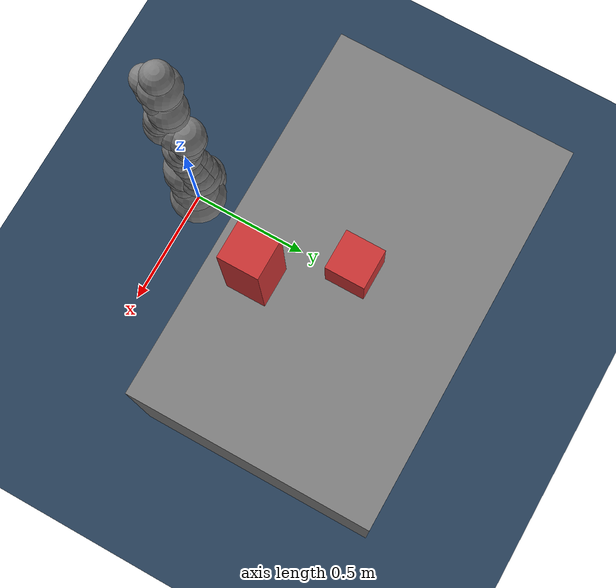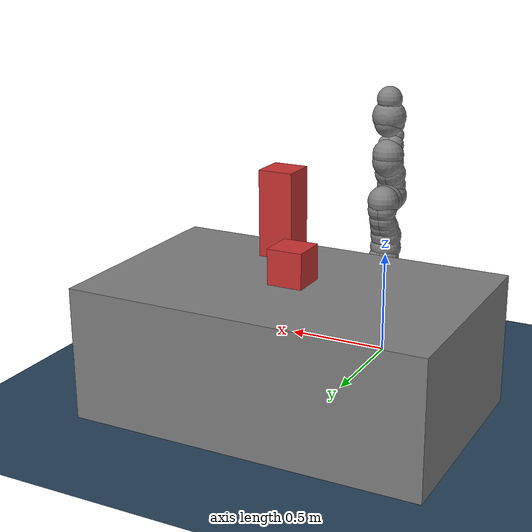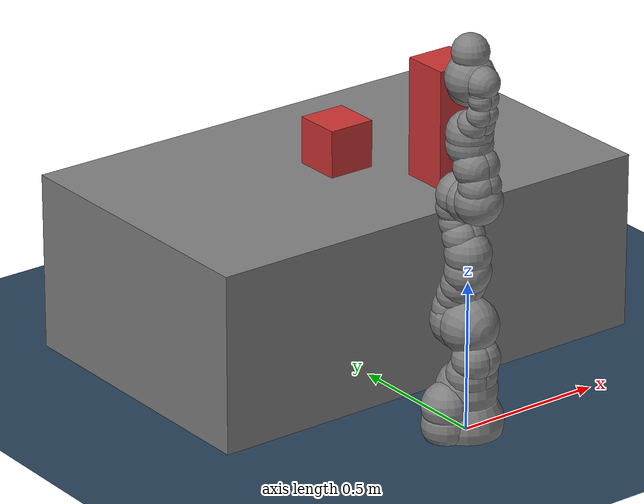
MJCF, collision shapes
<mujoco model="iiwa14 scene">
<!-- Default options -->
  <compiler angle="radian" assetdir="./mesh" autolimits="true" />
  <option integrator="RK4" noslip_iterations="20" />

  <contact>
    <pair geom1="front_object_table" geom2="cube1" solref="0.02 1" solimp="0.9 0.95 0.001" />
    <pair geom1="front_object_table" geom2="cube2" solref="0.02 1" solimp="0.9 0.95 0.001" />
    <pair geom1="front_object_table" geom2="cube3" solref="0.02 1" solimp="0.9 0.95 0.001" />
  </contact>
  <default>
      <joint armature="0.1" damping="0.1" />
      <default class="visual_only">
          <!-- visual group of 'collision' of 2 is to render -->
          <!-- All geoms with contype⁠=⁠conaffinity⁠=0 are discarded -->
          <geom type="mesh" contype="0" conaffinity="0" group="2" />
      </default>
      <default class="visual_collision">
          <!-- visual group of 'collision' of 2 is to render -->
          <geom type="mesh" solimp=".9 .99 .001" solref=".015 1" group="2" />
      </default>
      <default class="no_visual_collision">
          <!-- visual group of 'collision' of 3 is NOT to render -->
          <geom type="capsule" solimp=".9 .99 .001" solref=".015 1" group="3" />
      </default>
  </default>

  <include file="objects/florr_sky.xml"/>
  <include file="iiwa14.xml"/>
  <include file="objects/table.xml"/>
  <include file="objects/cube.xml"/>

  <statistic center="0.2 0 0.2" extent="1.0"/>

  <keyframe>
    <!-- Robot home position (7) + additional objects DOF (7) = 14 total -->
    <key name="home"
         qpos="0 0 0 0 0 0 -0.5 -0.25 0.4 0.71 1 0 0 0 0.1 0.4 0.75 1 0 0 0 0.45 0.4 0.81 1 0 0 0"/>
         ctrl="0 0 0 0 0 0 -0.5 -0.25 0.4 0.71 1 0 0 0 0.1 0.4 0.75 1 0 0 0 0.45 0.4 0.81 1 0 0 0"/>
  </keyframe>
</mujoco>

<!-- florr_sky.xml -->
<mujoco model="floor and sky">

    <visual>
        <headlight diffuse="0.6 0.6 0.6" ambient="0.3 0.3 0.3" specular="0 0 0"/>
        <rgba haze="0.15 0.25 0.35 1"/>
        <global azimuth="-120" elevation="-20"/>
    </visual>

    <asset>
        <texture type="skybox" builtin="gradient" rgb1="0.3 0.5 0.7" rgb2="0 0 0" width="512" height="3072"/>
        <texture type="2d" name="groundplane" builtin="checker" mark="edge" rgb1="0.2 0.3 0.4" rgb2="0.1 0.2 0.3"
        markrgb="0.8 0.8 0.8" width="300" height="300"/>
        <material name="groundplane" texture="groundplane" texuniform="true" texrepeat="5 5" reflectance="0.2"/>
    </asset>

    <worldbody>
        <light pos="0 0 1.5" dir="0 0 -1" directional="true"/>
        <geom name="floor" size="0 0 0.05" type="plane" material="groundplane"/>
    </worldbody>

</mujoco>

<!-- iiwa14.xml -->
<mujoco model="iiwa14">
  <compiler angle="radian" meshdir="assets" autolimits="true"/>

  <option integrator="implicitfast"/>

  <default>
    <default class="iiwa">
      <material specular="0.5" shininess="0.25"/>
      <joint axis="0 0 1"/>
      <general gaintype="fixed" biastype="affine" gainprm="2000" biasprm="0 -2000 -200"/>
      <default class="joint1">
        <joint range="-2.96706 2.96706"/>
        <general ctrlrange="-2.96706 2.96706"/>
        <default class="joint2">
          <joint range="-2.0944 2.0944"/>
          <general ctrlrange="-2.0944 2.0944"/>
        </default>
      </default>
      <default class="joint3">
        <joint range="-3.05433 3.05433"/>
        <general ctrlrange="-3.05433 3.05433"/>
      </default>
      <default class="visual">
        <geom type="mesh" contype="0" conaffinity="0" group="2" material="gray"/>
      </default>
      <default class="collision">
        <geom group="3"/>
      </default>
      <site size="0.001" rgba="1 0 0 1" group="4"/>
    </default>
  </default>

  <asset>
    <material class="iiwa" name="gray" rgba="0.4 0.4 0.4 1"/>
    <material class="iiwa" name="light_gray" rgba="0.6 0.6 0.6 1"/>
    <material class="iiwa" name="black" rgba="0 0 0 1"/>
    <material class="iiwa" name="orange" rgba="1 0.423529 0.0392157 1"/>

    <mesh file="link_0.obj"/>
    <mesh file="link_1.obj"/>
    <mesh file="link_2_orange.obj"/>
    <mesh file="link_2_grey.obj"/>
    <mesh file="link_3.obj"/>
    <mesh file="band.obj"/>
    <mesh file="kuka.obj"/>
    <mesh file="link_4_orange.obj"/>
    <mesh file="link_4_grey.obj"/>
    <mesh file="link_5.obj"/>
    <mesh file="link_6_orange.obj"/>
    <mesh file="link_6_grey.obj"/>
    <mesh file="link_7.obj"/>
  </asset>

  <worldbody>
    <light name="top" pos="0 0 2" mode="trackcom"/>
    <body name="base" childclass="iiwa">
      <inertial mass="5" pos="-0.1 0 0.07" diaginertia="0.05 0.06 0.03"/>
      <geom class="visual" mesh="link_0"/>
      <geom class="collision" size="0.12" pos="0 0 0.03"/>
      <geom class="collision" size="0.08" pos="-0.08 0 0.103"/>
      <geom class="collision" size="0.08" pos="-0.08 0 0.04"/>
      <geom class="collision" size="0.1" pos="0 0 0.14"/>
      <body name="link1" pos="0 0 0.1575">
        <inertial mass="5.76" pos="0 -0.03 0.12" diaginertia="0.0333 0.033 0.0123"/>
        <joint name="joint1" class="joint1"/>
        <geom class="visual" mesh="link_1"/>
        <geom class="collision" size="0.08" pos="0 0 -0.0005"/>
        <geom class="collision" size="0.075" pos="0.01 -0.025 0.0425"/>
        <geom class="collision" size="0.075" pos="-0.01 -0.025 0.0425"/>
        <geom class="collision" size="0.07" pos="0.01 -0.045 0.1025"/>
        <geom class="collision" size="0.07" pos="-0.01 -0.045 0.1025"/>
        <body name="link2" pos="0 0 0.2025" quat="0 0 1 1">
          <inertial mass="6.35" pos="0.0003 0.059 0.042" diaginertia="0.0305 0.0304 0.011" quat="0 0 1 1"/>
          <joint name="joint2" class="joint2"/>
          <geom class="visual" material="orange" mesh="link_2_orange"/>
          <geom class="visual" mesh="link_2_grey"/>
          <geom class="collision" size="0.095" pos="0 0 -0.01"/>
          <geom class="collision" size="0.09" pos="0 0 0.045"/>
          <geom class="collision" size="0.07" pos="-0.01 0.04 0.054"/>
          <geom class="collision" size="0.065" pos="-0.01 0.09 0.04"/>
          <geom class="collision" size="0.065" pos="-0.01 0.13 0.02"/>
          <geom class="collision" size="0.07" pos="0.01 0.04 0.054"/>
          <geom class="collision" size="0.065" pos="0.01 0.09 0.04"/>
          <geom class="collision" size="0.065" pos="0.01 0.13 0.02"/>
          <geom class="collision" size="0.075" pos="0 0.18 0"/>
          <body name="link3" pos="0 0.2045 0" quat="0 0 1 1">
            <inertial mass="3.5" pos="0 0.03 0.13" diaginertia="0.025 0.0238 0.0076"/>
            <joint name="joint3" class="joint1"/>
            <geom class="visual" mesh="link_3"/>
            <geom class="visual" material="light_gray" mesh="band"/>
            <geom class="visual" material="black" mesh="kuka"/>
            <geom class="collision" size="0.075" pos="0 0 0.0355"/>
            <geom class="collision" size="0.06" pos="0.01 0.023 0.0855"/>
            <geom class="collision" size="0.055" pos="0.01 0.048 0.1255"/>
            <geom class="collision" size="0.06" pos="0.01 0.056 0.1755"/>
            <geom class="collision" size="0.06" pos="-0.01 0.023 0.0855"/>
            <geom class="collision" size="0.055" pos="-0.01 0.048 0.1255"/>
            <geom class="collision" size="0.06" pos="-0.01 0.056 0.1755"/>
            <geom class="collision" size="0.075" pos="0 0.045 0.2155"/>
            <geom class="collision" size="0.075" pos="0 0 0.2155"/>
            <body name="link4" pos="0 0 0.2155" quat="1 1 0 0">
              <inertial mass="3.5" pos="0 0.067 0.034" diaginertia="0.017 0.0164 0.006" quat="1 1 0 0"/>
              <joint name="joint4" class="joint2"/>
              <geom class="visual" material="orange" mesh="link_4_orange"/>
              <geom class="visual" mesh="link_4_grey"/>
              <geom class="collision" size="0.078" pos="0 0.01 0.046"/>
              <geom class="collision" size="0.06" pos="0.01 0.06 0.052"/>
              <geom class="collision" size="0.065" pos="0.01 0.12 0.034"/>
              <geom class="collision" size="0.06" pos="-0.01 0.06 0.052"/>
              <geom class="collision" size="0.065" pos="-0.01 0.12 0.034"/>
              <geom class="collision" size="0.075" pos="0 0.184 0"/>
              <body name="link5" pos="0 0.1845 0" quat="0 0 1 1">
                <inertial mass="3.5" pos="0.0001 0.021 0.076" diaginertia="0.01 0.0087 0.00449"/>
                <joint name="joint5" class="joint1"/>
                <geom class="visual" mesh="link_5"/>
                <geom class="visual" material="light_gray" mesh="band"/>
                <geom class="visual" material="black" mesh="kuka"/>
                <geom class="collision" size="0.075" pos="0 0 0.0335"/>
                <geom class="collision" size="0.05" pos="-0.012 0.031 0.0755"/>
                <geom class="collision" size="0.05" pos="0.012 0.031 0.0755"/>
                <geom class="collision" size="0.04" pos="-0.012 0.06 0.1155"/>
                <geom class="collision" size="0.04" pos="0.012 0.06 0.1155"/>
                <geom class="collision" size="0.04" pos="-0.01 0.065 0.1655"/>
                <geom class="collision" size="0.04" pos="0.01 0.065 0.1655"/>
                <geom class="collision" size="0.035" pos="-0.012 0.065 0.1855"/>
                <geom class="collision" size="0.035" pos="0.012 0.065 0.1855"/>
                <body name="link6" pos="0 0 0.2155" quat="1 1 0 0">
                  <inertial mass="1.8" pos="0 0.0006 0.0004" diaginertia="0.0049 0.0047 0.0036" quat="1 1 0 0"/>
                  <joint name="joint6" class="joint2"/>
                  <geom class="visual" material="orange" mesh="link_6_orange"/>
                  <geom class="visual" mesh="link_6_grey"/>
                  <geom class="collision" size="0.055" pos="0 0 -0.059"/>
                  <geom class="collision" size="0.065" pos="0 -0.03 0.011"/>
                  <geom class="collision" size="0.08"/>
                  <body name="link7" pos="0 0.081 0" quat="0 0 1 1">
                    <inertial mass="1.2" pos="0 0 0.02" diaginertia="0.001 0.001 0.001"/>
                    <joint name="joint7" class="joint3"/>
                    <geom class="visual" mesh="link_7"/>
                    <geom class="collision" size="0.06" pos="0 0 0.001" margin="0.01"/>
                    <site pos="0 0 0.045" name="attachment_site"/>
                  </body>
                </body>
              </body>
            </body>
          </body>
        </body>
      </body>
    </body>
  </worldbody>

  <contact>
    <exclude body1="base" body2="link1"/>
    <exclude body1="base" body2="link2"/>
    <exclude body1="base" body2="link3"/>
    <exclude body1="link1" body2="link3"/>
    <exclude body1="link3" body2="link5"/>
    <exclude body1="link4" body2="link7"/>
    <exclude body1="link5" body2="link7"/>
  </contact>

  <actuator>
    <general name="actuator1" joint="joint1" class="joint1"/>
    <general name="actuator2" joint="joint2" class="joint2"/>
    <general name="actuator3" joint="joint3" class="joint1"/>
    <general name="actuator4" joint="joint4" class="joint2"/>
    <general name="actuator5" joint="joint5" class="joint1"/>
    <general name="actuator6" joint="joint6" class="joint2"/>
    <general name="actuator7" joint="joint7" class="joint3"/>
  </actuator>

</mujoco>

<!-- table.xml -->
<mujocoinclude>
    <asset>
        <material name="wood_table_mat" specular="0.5" shininess="0.5"
            rgba="0.5 0.5 0.5 1" />
    </asset>

    <worldbody>
        <body name="front_object_table" pos="0.1 0.8 0.3" euler="0 0 0">
            <geom name="front_object_table" size="0.8 0.5 0.3" pos="0 0 0" type="box"
                material="wood_table_mat" contype="1" conaffinity="1" friction="1 0.1 0.001" />
            <inertial pos="0 0 0" mass="50" diaginertia="10 10 10" />
        </body>

    </worldbody>

</mujocoinclude>

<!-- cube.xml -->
<mujocoinclude>

    <asset>
        <material name="red_cube" rgba="0.8 0.2 0.2 1"/>
    </asset>

    <worldbody>

        <!-- Red cube object -->
        <body name="red_cube_01" pos="0.1 0.8 0.68">
            <joint type="free" />
            <geom name="cube" type="box" size="0.08 0.08 0.08" material="red_cube" contype="1" conaffinity="1" friction="1 0.1 0.001"/>
            <inertial pos="0 0 0" mass="0.05" diaginertia="10 10 10"/>
        </body>

        <body name="red_cube_02" pos="0.3 0.5 0.81">
            <joint type="free" />
                <geom name="cube2" type="box" size="0.08 0.08 0.2" material="red_cube" contype="1" conaffinity="1" friction="1 0.1 0.001" />
            <inertial pos="0 0 0" mass="15" diaginertia="10 10 10"/>
        </body>

    </worldbody>

</mujocoinclude>
